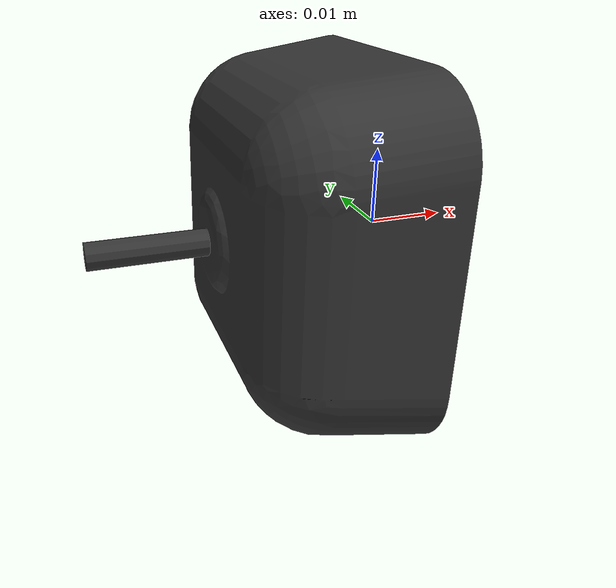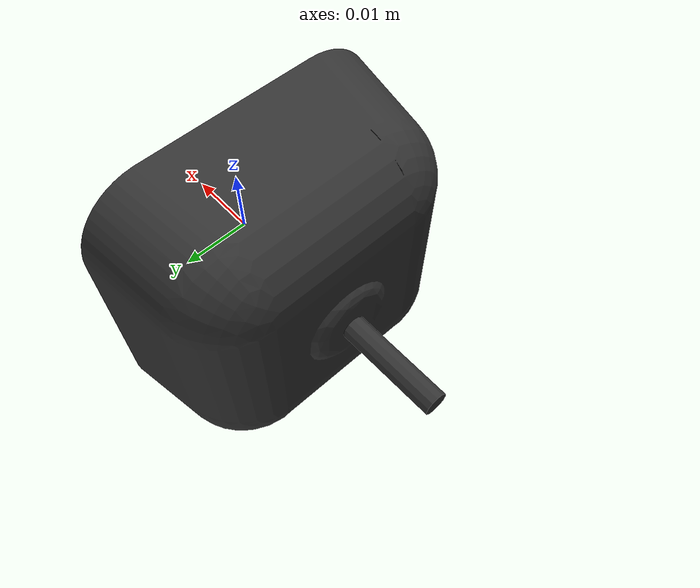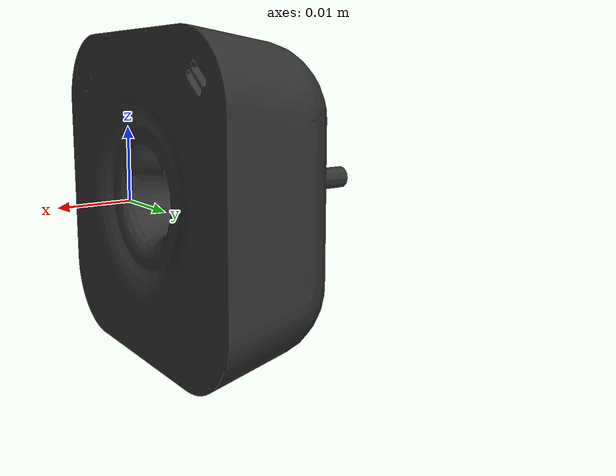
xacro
<robot name="Camera_link"><link name="Camera_link">
    <inertial>
      <origin rpy="0 0 0" xyz="-0.010925 -4.5428E-06 0.00024772" />
      <mass value="0.033156" />
      <inertia ixx="9.3903E-06" ixy="-1.4061E-09" ixz="5.0587E-08" iyy="5.845E-06" iyz="-2.4174E-09" izz="5.8692E-06" />
    </inertial>
    <visual>
      <origin rpy="0 0 0" xyz="0 0 0" />
      <geometry>
        <mesh filename="package://robotican_description/lizi/meshes/Camera_Link.STL" />
      </geometry>
      <material name="">
        <color rgba="0.2 0.2 0.2 1" />
      </material>
    </visual>
    <collision>
      <origin rpy="0 0 0" xyz="0 0 0" />
      <geometry>
        <mesh filename="package://robotican_description/lizi/meshes/Camera_Link.STL" />
      </geometry>
    </collision>
  </link>
  </robot>
